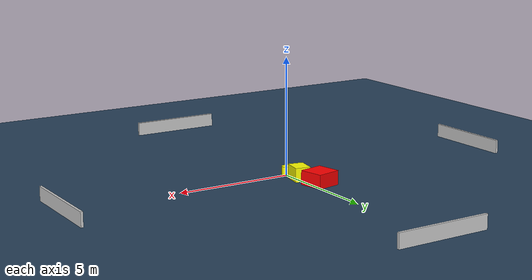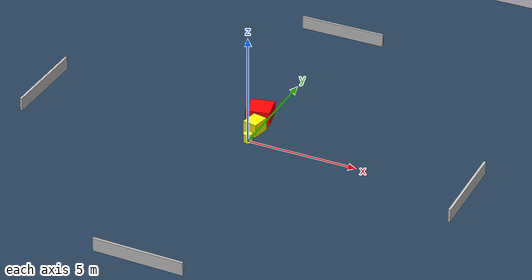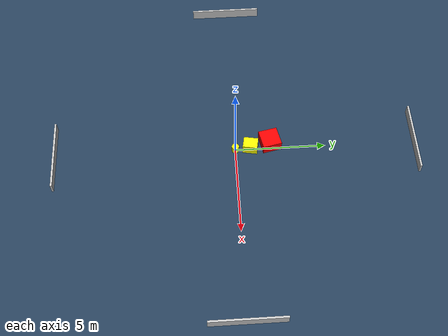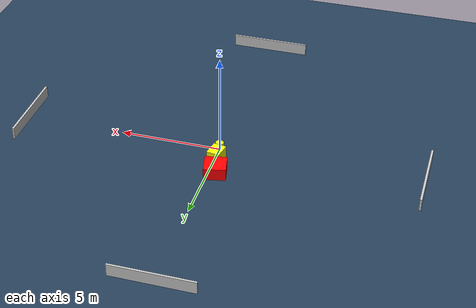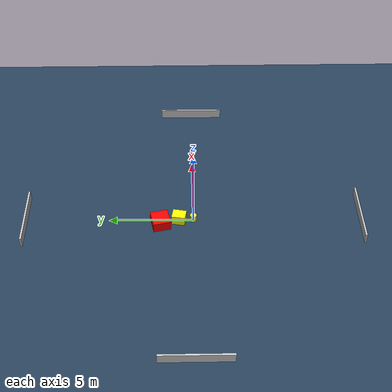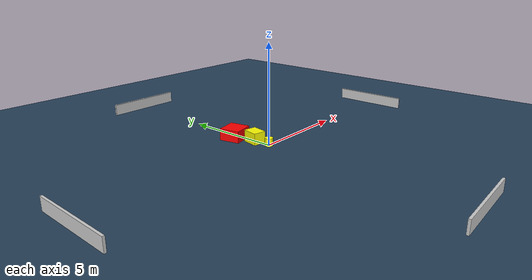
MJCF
<?xml version="1.0" ?>
<mujoco model="generated_environment">
  <option timestep="0.01" integrator="RK4" cone="elliptic"/>
  <default>
    <geom density="1"/>
  </default>
  <asset>
    <texture builtin="gradient" height="3072" name="skybox" rgb1="0.3 0.5 0.7" rgb2="0 0 0" type="skybox" width="512"/>
    <texture builtin="checker" height="300" name="groundplane" rgb1="0.2 0.3 0.4" rgb2="0.1 0.2 0.3" type="2d" width="300"/>
    <material name="groundplane" reflectance="0.2" texrepeat="5 5" texture="groundplane"/>
  </asset>
  <worldbody>
    <light dir="0 0 -1" directional="true" pos="0 0 1.5"/>
    <geom condim="3" friction="0.5 0.005 0.001" material="groundplane" name="floor" pos="0 0 0" size="0 0 0.05" type="plane"/>
    <body name="walls">
      <geom name="wall_1" condim="4" pos="-10.0 0.0 0.3" rgba="0.800000011920929 0.800000011920929 0.800000011920929 1.0" size="0.05 2.0 0.3" type="box"/>
      <geom name="wall_2" condim="4" pos="10.0 0.0 0.3" rgba="0.800000011920929 0.800000011920929 0.800000011920929 1.0" size="0.05 2.0 0.3" type="box"/>
      <geom name="wall_3" condim="4" pos="0.0 -10.0 0.3" rgba="0.800000011920929 0.800000011920929 0.800000011920929 1.0" size="2.0 0.05 0.3" type="box"/>
      <geom name="wall_4" condim="4" pos="0.0 10.0 0.3" rgba="0.800000011920929 0.800000011920929 0.800000011920929 1.0" size="2.0 0.05 0.3" type="box"/>
    </body>
    <body name="robot">
      <joint name="joint_x" type="slide" pos="0 0 0" axis="1 0 0"/>
      <joint name="joint_y" type="slide" pos="0 0 0" axis="0 1 0"/>
      <geom name="robot" type="cylinder" pos="0.0 0.0 0.2" size="0.2 0.2 0.0" mass="5.0" friction="1.0 0.005 0.0001" condim="4" rgba="1.0 1.0 0.0 1.0"/>
    </body>
    <body name="obstacle_1_movable">
      <geom name="obstacle_1_movable" condim="4" pos="-0.0792255466147196 0.8466066534323544 0.3" euler="0 0 79.58431755273281" friction="0.0 0.005 0.001" rgba="1.0 1.0 0.0 1.0" size="0.4013161927676957 0.3252082188248038 0.3" type="box" mass="0.1"/>
      <joint type="free"/>
    </body>
    <body name="obstacle_2_static">
      <geom name="obstacle_2_static" condim="4" pos="-0.34905554219759855 1.9491440948607772 0.3" euler="0 0 102.059825685856" friction="0.0 0.005 0.001" rgba="1.0 0.0 0.0 1.0" size="0.5253379510851047 0.5355086833390401 0.3" type="box"/>
    </body>
  </worldbody>
  <actuator>
    <motor name="actuator_x" joint="joint_x" gear="1" ctrlrange="-1 1"/>
    <motor name="actuator_y" joint="joint_y" gear="1" ctrlrange="-1 1"/>
  </actuator>
</mujoco>
